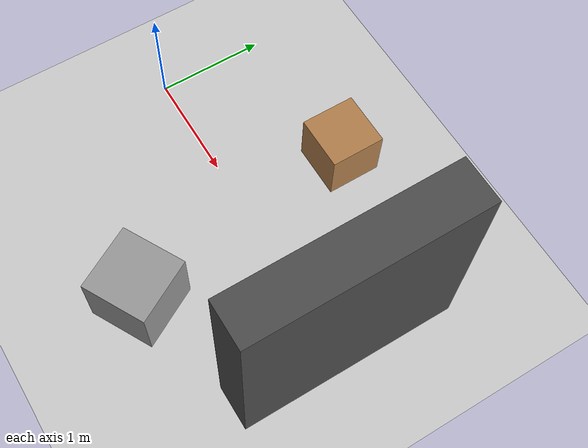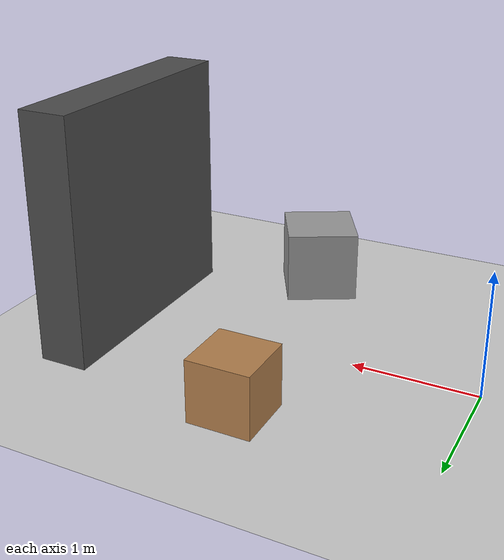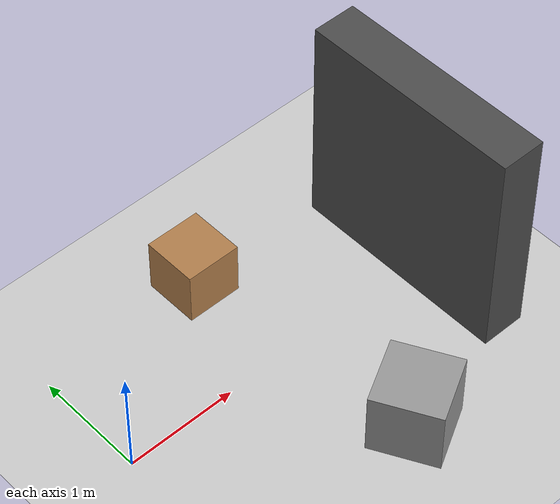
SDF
<?xml version="1.0" ?>
<sdf version="1.6">
  <world name="factory_room">

    <!-- Sun Light -->
    <include>
      <uri>model://sun</uri>
    </include>

    <!-- Ground Plane -->
    <include>
      <uri>model://ground_plane</uri>
    </include>

    <!-- Factory Box 1 -->
    <model name="factory_box_1">
      <pose>1.5 1.0 0.25 0 0 0</pose>
      <static>true</static>
      <link name="link">
        <visual name="visual">
          <geometry><box><size>0.5 0.5 0.5</size></box></geometry>
          <material><script><uri>file://media/materials/scripts/gazebo.material</uri><name>Gazebo/Wood</name></script></material>
        </visual>
        <collision name="collision">
          <geometry><box><size>0.5 0.5 0.5</size></box></geometry>
        </collision>
      </link>
    </model>

    <!-- Factory Box 2 -->
    <model name="factory_box_2">
      <pose>1.8 -1.2 0.3 0 0 0.5</pose>
      <static>true</static>
      <link name="link">
        <visual name="visual">
          <geometry><box><size>0.6 0.6 0.6</size></box></geometry>
          <material><script><uri>file://media/materials/scripts/gazebo.material</uri><name>Gazebo/Grey</name></script></material>
        </visual>
        <collision name="collision">
          <geometry><box><size>0.6 0.6 0.6</size></box></geometry>
        </collision>
      </link>
    </model>

    <!-- Storage Shelf Structure -->
    <model name="storage_shelf">
      <pose>3.0 0.0 1.0 0 0 0</pose>
      <static>true</static>
      <link name="link">
        <visual name="visual">
          <geometry><box><size>0.4 2.0 2.0</size></box></geometry>
          <material><script><uri>file://media/materials/scripts/gazebo.material</uri><name>Gazebo/DarkGrey</name></script></material>
        </visual>
        <collision name="collision">
          <geometry><box><size>0.4 2.0 2.0</size></box></geometry>
        </collision>
      </link>
    </model>

  </world>
</sdf>
